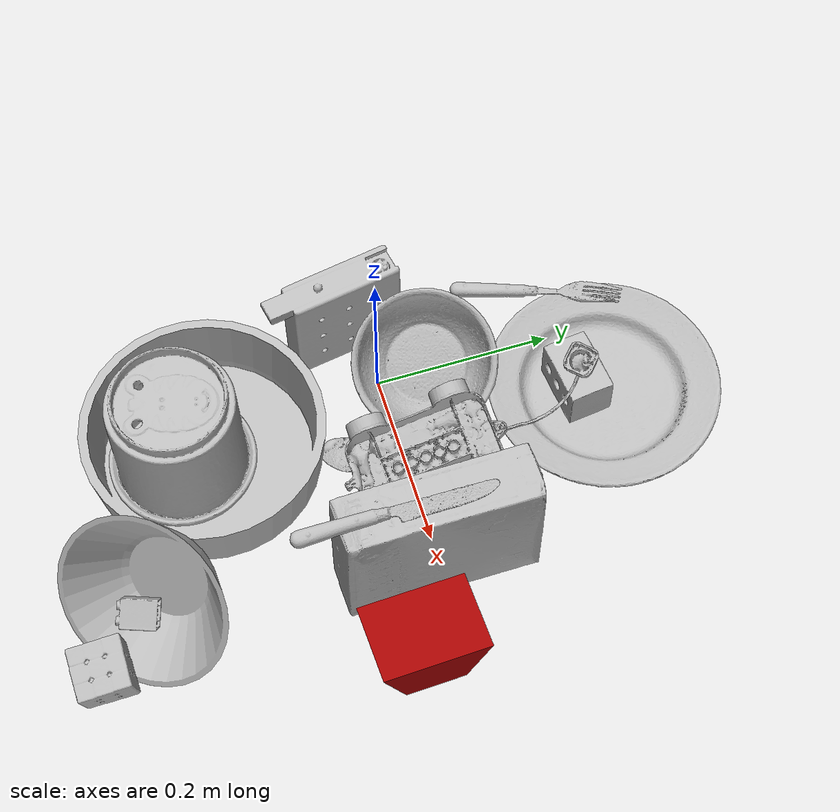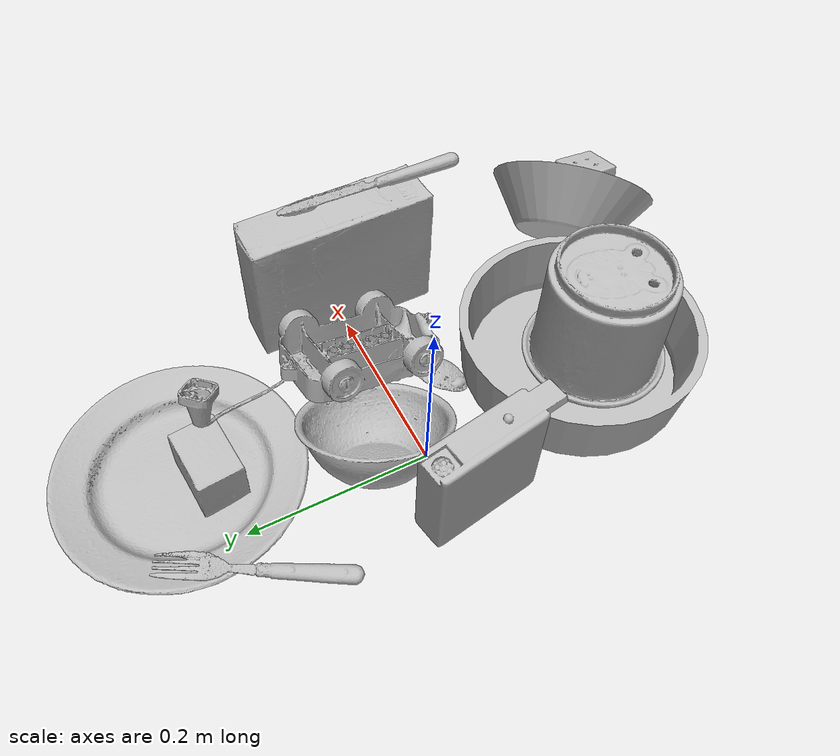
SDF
<sdf version="1.4">
  <world name="default">
    <light name="light1" type="point">
      <pose>0 0 1 0 0 0</pose>
      <diffuse>3 3 3 1</diffuse>
      <specular>3 3 3 1</specular>
    </light>
    <light name="light2" type="point">
      <pose>0 0.5 2 0 0 0</pose>
      <diffuse>1 1 1 1</diffuse>
      <specular>1 1 1 1</specular>
    </light>
    <light name="light3" type="point">
      <pose>0 0.5 2 0 0 0</pose>
      <diffuse>3 3 3 1</diffuse>
      <specular>3 3 3 1</specular>
    </light>
    <scene>
      <ambient>0.7 0.7 0.7</ambient>
    </scene>
    <model name="plate1">
      <link name="link_plate1">
        <collision name="default">
          <geometry>
            <mesh>
              <uri>model://pan_tefal/collision_meshes/collision.obj</uri>
              <scale>1.0 1.0 1.0</scale>
            </mesh>
          </geometry>
          <surface>
            <friction>
              <ode>
                <mu>0.5</mu>
                <mu2>0.5</mu2>
              </ode>
            </friction>
          <contact>
        <ode>
            <max_vel>0</max_vel>
            <min_depth>0.0001</min_depth>
            <kp>1e8</kp>
        </ode>
    </contact></surface>
        </collision>
        <visual name="default">
          <geometry>
            <mesh>
              <uri>model://pan_tefal/visual_meshes/visual.dae</uri>
              <scale>1.0 1.0 1.0</scale>
            </mesh>
          </geometry>
        </visual>
        <inertial>
          <mass>0.7575002908706665</mass>
          <pose>-0.00018002181604970247 3.278869189671241e-05 -0.00851493701338768 0.0008190213215647545 -0.0003301469994364688 -0.3318472895374236</pose>
          <inertia>
            <ixx>0.0052289874</ixx>
            <iyy>0.0052627004</iyy>
            <izz>0.009625561</izz>
            <ixy>0</ixy>
            <ixz>0</ixz>
            <iyz>0</iyz>
          </inertia>
        </inertial>
      </link>
      <pose>0.034306712448596954 -0.20475228130817413 0.037971317768096924 -0.00046993733056915205 -0.0004528125097112283 0.9629748403451839</pose>
    </model>
    <model name="plate2">
      <link name="link_plate2">
        <collision name="default">
          <geometry>
            <mesh>
              <uri>model://plate/collision_meshes/collision.obj</uri>
              <scale>1.0 1.0 1.0</scale>
            </mesh>
          </geometry>
          <surface>
            <friction>
              <ode>
                <mu>0.5</mu>
                <mu2>0.5</mu2>
              </ode>
            </friction>
          <contact>
        <ode>
            <max_vel>0</max_vel>
            <min_depth>0.0001</min_depth>
            <kp>1e8</kp>
        </ode>
    </contact></surface>
        </collision>
        <visual name="default">
          <geometry>
            <mesh>
              <uri>model://plate/visual_meshes/visual.dae</uri>
              <scale>1.0 1.0 1.0</scale>
            </mesh>
          </geometry>
        </visual>
        <inertial>
          <mass>0.24305373430252075</mass>
          <pose>-0.0006044657784514129 0.0002782582014333457 -0.0010561988456174731 0.0022187349237576767 -0.0032255124479001144 0.4526250186623527</pose>
          <inertia>
            <ixx>0.00113701</ixx>
            <iyy>0.0011261352</iyy>
            <izz>0.0022238225</izz>
            <ixy>0</ixy>
            <ixz>0</ixz>
            <iyz>0</iyz>
          </inertia>
        </inertial>
      </link>
      <pose>0.08532142639160156 0.23822282254695892 0.013733104802668095 5.95489864733327e-06 5.040463981817904e-06 -0.9940194105997759</pose>
    </model>
    <model name="bowl1">
      <link name="link_bowl1">
        <collision name="default">
          <geometry>
            <mesh>
              <uri>model://bowl/collision_meshes/collision.obj</uri>
              <scale>1.0 1.0 1.0</scale>
            </mesh>
          </geometry>
          <surface>
            <friction>
              <ode>
                <mu>0.5</mu>
                <mu2>0.5</mu2>
              </ode>
            </friction>
          <contact>
        <ode>
            <max_vel>0</max_vel>
            <min_depth>0.0001</min_depth>
            <kp>1e8</kp>
        </ode>
    </contact></surface>
        </collision>
        <visual name="default">
          <geometry>
            <mesh>
              <uri>model://bowl/visual_meshes/visual.dae</uri>
              <scale>1.0 1.0 1.0</scale>
            </mesh>
          </geometry>
        </visual>
        <inertial>
          <mass>0.08028676360845566</mass>
          <pose>0.00020445045083761215 -0.0010302026057615876 -0.0008042661938816309 -0.015764207515600946 0.014546645366850262 0.7140316236369888</pose>
          <inertia>
            <ixx>0.00018442512</ixx>
            <iyy>0.00018030431</iyy>
            <izz>0.0003102665</izz>
            <ixy>0</ixy>
            <ixz>0</ixz>
            <iyz>0</iyz>
          </inertia>
        </inertial>
      </link>
      <pose>0.014821420423686504 0.051218122243881226 0.04550369828939438 0.41290791465753907 -0.28148911876553084 1.7269758494493386</pose>
    </model>
    <model name="bowl2">
      <link name="link_bowl2">
        <collision name="default">
          <geometry>
            <mesh>
              <uri>model://bowl_a/collision_meshes/collision.obj</uri>
              <scale>1.0 1.0 1.0</scale>
            </mesh>
          </geometry>
          <surface>
            <friction>
              <ode>
                <mu>0.5</mu>
                <mu2>0.5</mu2>
              </ode>
            </friction>
          <contact>
        <ode>
            <max_vel>0</max_vel>
            <min_depth>0.0001</min_depth>
            <kp>1e8</kp>
        </ode>
    </contact></surface>
        </collision>
        <visual name="default">
          <geometry>
            <mesh>
              <uri>model://bowl_a/visual_meshes/visual.dae</uri>
              <scale>1.0 1.0 1.0</scale>
            </mesh>
          </geometry>
        </visual>
        <inertial>
          <mass>0.2016693353652954</mass>
          <pose>0.000278673687716946 4.731108856503852e-05 -0.0013765295734629035 -0.0009805301894988984 -0.0010938186520021772 -0.19123883274053055</pose>
          <inertia>
            <ixx>0.00057416206</ixx>
            <iyy>0.000577687</iyy>
            <izz>0.0010211696</izz>
            <ixy>0</ixy>
            <ixz>0</ixz>
            <iyz>0</iyz>
          </inertia>
        </inertial>
      </link>
      <pose>0.1972118765115738 -0.2961258292198181 0.06366705149412155 0.9609176036432573 0.0005835924470175358 0.8123883445082108</pose>
    </model>
    <model name="silverware1">
      <link name="link_silverware1">
        <collision name="default">
          <geometry>
            <mesh>
              <uri>model://spoon/collision_meshes/collision.obj</uri>
              <scale>1.0 1.0 1.0</scale>
            </mesh>
          </geometry>
          <surface>
            <friction>
              <ode>
                <mu>0.5</mu>
                <mu2>0.5</mu2>
              </ode>
            </friction>
          <contact>
        <ode>
            <max_vel>0</max_vel>
            <min_depth>0.0001</min_depth>
            <kp>1e8</kp>
        </ode>
    </contact></surface>
        </collision>
        <visual name="default">
          <geometry>
            <mesh>
              <uri>model://spoon/visual_meshes/visual.dae</uri>
              <scale>1.0 1.0 1.0</scale>
            </mesh>
          </geometry>
        </visual>
        <inertial>
          <mass>0.023438503965735435</mass>
          <pose>-0.005526317749172449 -0.0016034176805987954 -0.000727164966519922 0.03521671071703309 -0.03906584129558259 0.006150610048623938</pose>
          <inertia>
            <ixx>1.3036873e-06</ixx>
            <iyy>8.918272e-05</iyy>
            <izz>8.982564e-05</izz>
            <ixy>0</ixy>
            <ixz>0</ixz>
            <iyz>0</iyz>
          </inertia>
        </inertial>
      </link>
      <pose>0.12340155988931656 -0.010923477821052074 0.01021306961774826 3.0836016419512022 -0.06152709564323096 -2.3057020967649478</pose>
    </model>
    <model name="box1">
      <link name="link_box1">
        <collision name="default">
          <geometry>
            <mesh>
              <uri>model://cracker_box/collision_meshes/collision.obj</uri>
              <scale>1.0 1.0 1.0</scale>
            </mesh>
          </geometry>
          <surface>
            <friction>
              <ode>
                <mu>0.5</mu>
                <mu2>0.5</mu2>
              </ode>
            </friction>
          <contact>
        <ode>
            <max_vel>0</max_vel>
            <min_depth>0.0001</min_depth>
            <kp>1e8</kp>
        </ode>
    </contact></surface>
        </collision>
        <visual name="default">
          <geometry>
            <mesh>
              <uri>model://cracker_box/visual_meshes/visual.dae</uri>
              <scale>1.0 1.0 1.0</scale>
            </mesh>
          </geometry>
        </visual>
        <inertial>
          <mass>3.1733922958374023</mass>
          <pose>0.0009464119793847203 0.00025434247800149024 -0.0017029535956680775 -0.00031620768891544627 -0.011106485874643508 0.0025467963987026074</pose>
          <inertia>
            <ixx>0.008071693</ixx>
            <iyy>0.013327951</iyy>
            <izz>0.01902021</izz>
            <ixy>0</ixy>
            <ixz>0</ixz>
            <iyz>0</iyz>
          </inertia>
        </inertial>
      </link>
      <pose>0.23167431354522705 -0.002979482989758253 0.08175750076770782 1.545244213003144 0.009041224949129352 1.5922696196824007</pose>
    </model>
    <model name="box2">
      <link name="link_box2">
        <collision name="default">
          <geometry>
            <mesh>
              <uri>model://rubiks_cube/collision_meshes/collision.obj</uri>
              <scale>1.0 1.0 1.0</scale>
            </mesh>
          </geometry>
          <surface>
            <friction>
              <ode>
                <mu>0.5</mu>
                <mu2>0.5</mu2>
              </ode>
            </friction>
          <contact>
        <ode>
            <max_vel>0</max_vel>
            <min_depth>0.0001</min_depth>
            <kp>1e8</kp>
        </ode>
    </contact></surface>
        </collision>
        <visual name="default">
          <geometry>
            <mesh>
              <uri>model://rubiks_cube/visual_meshes/visual.dae</uri>
              <scale>1.0 1.0 1.0</scale>
            </mesh>
          </geometry>
        </visual>
        <inertial>
          <mass>0.15184316039085388</mass>
          <pose>2.6721041649580002e-05 5.2569666877388954e-05 -7.264316536748083e-06 -0.0546734747968529 -0.09813870099197174 -0.03445517010401606</pose>
          <inertia>
            <ixx>8.390353e-05</ixx>
            <iyy>8.351226e-05</iyy>
            <izz>8.459882e-05</izz>
            <ixy>0</ixy>
            <ixz>0</ixz>
            <iyz>0</iyz>
          </inertia>
        </inertial>
      </link>
      <pose>0.25722408294677734 -0.37000957131385803 0.03553934395313263 1.7815501905139155 -0.06369357315631831 1.5676808202669246</pose>
    </model>
    <model name="cup1">
      <link name="link_cup1">
        <collision name="default">
          <geometry>
            <mesh>
              <uri>model://f_cups/collision_meshes/collision.obj</uri>
              <scale>2.0 2.0 2.0</scale>
            </mesh>
          </geometry>
          <surface>
            <friction>
              <ode>
                <mu>0.5</mu>
                <mu2>0.5</mu2>
              </ode>
            </friction>
          <contact>
        <ode>
            <max_vel>0</max_vel>
            <min_depth>0.0001</min_depth>
            <kp>1e8</kp>
        </ode>
    </contact></surface>
        </collision>
        <visual name="default">
          <geometry>
            <mesh>
              <uri>model://f_cups/visual_meshes/visual.dae</uri>
              <scale>2.0 2.0 2.0</scale>
            </mesh>
          </geometry>
        </visual>
        <inertial>
          <mass>0.31799542903900146</mass>
          <pose>-0.006342939101159573 -0.0012480145087465644 -0.00731107359752059 0.7862267301708457 -0.2607925342729672 -0.18237300859269054</pose>
          <inertia>
            <ixx>0.0011956966</ixx>
            <iyy>0.0012542997</iyy>
            <izz>0.001305761</izz>
            <ixy>0</ixy>
            <ixz>0</ixz>
            <iyz>0</iyz>
          </inertia>
        </inertial>
      </link>
      <pose>0.03392193093895912 -0.23314376175403595 0.08022184669971466 3.1396742795227484 -0.00040717326784475553 -2.754484645653189</pose>
    </model>
    <model name="silverware2">
      <link name="link_silverware2">
        <collision name="default">
          <geometry>
            <mesh>
              <uri>model://knife/collision_meshes/collision.obj</uri>
              <scale>1.0 1.0 1.0</scale>
            </mesh>
          </geometry>
          <surface>
            <friction>
              <ode>
                <mu>0.5</mu>
                <mu2>0.5</mu2>
              </ode>
            </friction>
          <contact>
        <ode>
            <max_vel>0</max_vel>
            <min_depth>0.0001</min_depth>
            <kp>1e8</kp>
        </ode>
    </contact></surface>
        </collision>
        <visual name="default">
          <geometry>
            <mesh>
              <uri>model://knife/visual_meshes/visual.dae</uri>
              <scale>1.0 1.0 1.0</scale>
            </mesh>
          </geometry>
        </visual>
        <inertial>
          <mass>0.01713745854794979</mass>
          <pose>-0.02378525771200657 0.0015275123296305537 5.062021591584198e-05 0.07305753061421462 0.017248419855317693 -0.007409818535045194</pose>
          <inertia>
            <ixx>4.864306e-07</ixx>
            <iyy>6.583934e-05</iyy>
            <izz>6.5996e-05</izz>
            <ixy>0</ixy>
            <ixz>0</ixz>
            <iyz>0</iyz>
          </inertia>
        </inertial>
      </link>
      <pose>0.2369983196258545 -0.05009938031435013 0.17112940549850464 0.17743771542245196 -0.011341559418875973 1.5582140702332639</pose>
    </model>
    <model name="silverware3">
      <link name="link_silverware3">
        <collision name="default">
          <geometry>
            <mesh>
              <uri>model://fork/collision_meshes/collision.obj</uri>
              <scale>1.0 1.0 1.0</scale>
            </mesh>
          </geometry>
          <surface>
            <friction>
              <ode>
                <mu>0.5</mu>
                <mu2>0.5</mu2>
              </ode>
            </friction>
          <contact>
        <ode>
            <max_vel>0</max_vel>
            <min_depth>0.0001</min_depth>
            <kp>1e8</kp>
        </ode>
    </contact></surface>
        </collision>
        <visual name="default">
          <geometry>
            <mesh>
              <uri>model://fork/visual_meshes/visual.dae</uri>
              <scale>1.0 1.0 1.0</scale>
            </mesh>
          </geometry>
        </visual>
        <inertial>
          <mass>0.012323527596890926</mass>
          <pose>-0.029570043087005615 0.00046588233090005815 0.0003218861238565296 -0.013551145261099908 -0.01097783717976447 0.01445390335153306</pose>
          <inertia>
            <ixx>4.3200933e-07</ixx>
            <iyy>3.2173175e-05</iyy>
            <izz>3.236641e-05</izz>
            <ixy>0</ixy>
            <ixz>0</ixz>
            <iyz>0</iyz>
          </inertia>
        </inertial>
      </link>
      <pose>-0.05062219500541687 0.20341560244560242 0.02418753132224083 3.0496265537107714 -0.18925339172731617 1.1363890176544857</pose>
    </model>
    <model name="toy1">
      <link name="link_toy1">
        <collision name="default">
          <geometry>
            <mesh>
              <uri>model://foam_brick/collision_meshes/collision.obj</uri>
              <scale>1.0 1.0 1.0</scale>
            </mesh>
          </geometry>
          <surface>
            <friction>
              <ode>
                <mu>0.5</mu>
                <mu2>0.5</mu2>
              </ode>
            </friction>
          <contact>
        <ode>
            <max_vel>0</max_vel>
            <min_depth>0.0001</min_depth>
            <kp>1e8</kp>
        </ode>
    </contact></surface>
        </collision>
        <visual name="default">
          <geometry>
            <mesh>
              <uri>model://foam_brick/visual_meshes/visual.dae</uri>
              <scale>1.0 1.0 1.0</scale>
            </mesh>
          </geometry>
        </visual>
        <inertial>
          <mass>0.22379855811595917</mass>
          <pose>-0.00025224717683158815 0.0003458436403889209 -0.0002532101352699101 -0.29401565582258504 0.017274431815567964 -0.0007449878256007176</pose>
          <inertia>
            <ixx>9.775939e-05</ixx>
            <iyy>0.00015607789</iyy>
            <izz>0.00015806146</izz>
            <ixy>0</ixy>
            <ixz>0</ixz>
            <iyz>0</iyz>
          </inertia>
        </inertial>
      </link>
      <pose>0.07323487848043442 0.20942841470241547 0.030248552560806274 -1.5861431400460646 0.002002996950727151 -3.0411811704417895</pose>
    </model>
    <model name="toy2">
      <link name="link_toy2">
        <collision name="default">
          <geometry>
            <mesh>
              <uri>model://g_lego_duplo/collision_meshes/collision.obj</uri>
              <scale>1.0 1.0 1.0</scale>
            </mesh>
          </geometry>
          <surface>
            <friction>
              <ode>
                <mu>0.5</mu>
                <mu2>0.5</mu2>
              </ode>
            </friction>
          <contact>
        <ode>
            <max_vel>0</max_vel>
            <min_depth>0.0001</min_depth>
            <kp>1e8</kp>
        </ode>
    </contact></surface>
        </collision>
        <visual name="default">
          <geometry>
            <mesh>
              <uri>model://g_lego_duplo/visual_meshes/visual.dae</uri>
              <scale>1.0 1.0 1.0</scale>
            </mesh>
          </geometry>
        </visual>
        <inertial>
          <mass>0.5124852657318115</mass>
          <pose>-0.05004769191145897 0.0017554633086547256 0.003880675183609128 0.010962987419080987 0.0381082502855883 -0.09653031806986456</pose>
          <inertia>
            <ixx>0.0007425969</ixx>
            <iyy>0.0022451086</iyy>
            <izz>0.0028087152</izz>
            <ixy>0</ixy>
            <ixz>0</ixz>
            <iyz>0</iyz>
          </inertia>
        </inertial>
      </link>
      <pose>0.1221487820148468 0.07520663738250732 0.060248877853155136 -2.887645469503601 -0.1863961478163901 1.6060037503827898</pose>
    </model>
    <model name="toy3">
      <link name="link_toy3">
        <collision name="default">
          <geometry>
            <mesh>
              <uri>model://nine_hole_peg_test/collision_meshes/collision.obj</uri>
              <scale>1.0 1.0 1.0</scale>
            </mesh>
          </geometry>
          <surface>
            <friction>
              <ode>
                <mu>0.5</mu>
                <mu2>0.5</mu2>
              </ode>
            </friction>
          <contact>
        <ode>
            <max_vel>0</max_vel>
            <min_depth>0.0001</min_depth>
            <kp>1e8</kp>
        </ode>
    </contact></surface>
        </collision>
        <visual name="default">
          <geometry>
            <mesh>
              <uri>model://nine_hole_peg_test/visual_meshes/visual.dae</uri>
              <scale>1.0 1.0 1.0</scale>
            </mesh>
          </geometry>
        </visual>
        <inertial>
          <mass>0.8364987969398499</mass>
          <pose>-0.004617386497557163 -0.009647614322602749 2.6460691515239887e-05 -0.0014666793226822761 0.000719418076932787 -0.634241593386854</pose>
          <inertia>
            <ixx>0.0013080036</ixx>
            <iyy>0.0012212693</iyy>
            <izz>0.0022920077</izz>
            <ixy>0</ixy>
            <ixz>0</ixz>
            <iyz>0</iyz>
          </inertia>
        </inertial>
      </link>
      <pose>-0.06591493636369705 -0.029830627143383026 0.0686350017786026 -1.6634524861325353 -1.5635964195038652 -1.3059443366426267</pose>
    </model>
    <model name="toy4">
      <link name="link_toy4">
        <collision name="default">
          <geometry>
            <mesh>
              <uri>model://b_lego_duplo/collision_meshes/collision.obj</uri>
              <scale>1.0 1.0 1.0</scale>
            </mesh>
          </geometry>
          <surface>
            <friction>
              <ode>
                <mu>0.5</mu>
                <mu2>0.5</mu2>
              </ode>
            </friction>
          <contact>
        <ode>
            <max_vel>0</max_vel>
            <min_depth>0.0001</min_depth>
            <kp>1e8</kp>
        </ode>
    </contact></surface>
        </collision>
        <visual name="default">
          <geometry>
            <mesh>
              <uri>model://b_lego_duplo/visual_meshes/visual.dae</uri>
              <scale>1.0 1.0 1.0</scale>
            </mesh>
          </geometry>
        </visual>
        <inertial>
          <mass>0.0316849946975708</mass>
          <pose>-0.00011053055641241372 -9.15226701181382e-06 0.0019294292433187366 -0.03749472548528336 -0.026354304906346077 0.4518915128408031</pose>
          <inertia>
            <ixx>6.4845735e-06</ixx>
            <iyy>6.5281647e-06</iyy>
            <izz>5.777544e-06</izz>
            <ixy>0</ixy>
            <ixz>0</ixz>
            <iyz>0</iyz>
          </inertia>
        </inertial>
      </link>
      <pose>0.20498472452163696 -0.3208337426185608 0.033781491219997406 -1.4674350956764488 1.088077138607205 2.889648552975764</pose>
    </model>
    <model name="toy5">
      <link name="link_toy5">
        <collision name="default">
          <geometry>
            <mesh>
              <uri>model://prism/collision_meshes/collision.obj</uri>
              <scale>1.0 1.0 1.0</scale>
            </mesh>
          </geometry>
          <surface>
            <friction>
              <ode>
                <mu>0.5</mu>
                <mu2>0.5</mu2>
              </ode>
            </friction>
          <contact>
        <ode>
            <max_vel>0</max_vel>
            <min_depth>0.0001</min_depth>
            <kp>1e8</kp>
        </ode>
    </contact></surface>
        </collision>
        <visual name="default">
          <geometry>
            <mesh>
              <uri>model://prism/visual_meshes/visual.dae</uri>
              <scale>1.0 1.0 1.0</scale>
            </mesh>
          </geometry>
        </visual>
        <inertial>
          <mass>0.34586653113365173</mass>
          <pose>-9.853597293840721e-05 -4.96157269935793e-07 -0.0033869100734591484 0.0 0.006559180766136186 0.0</pose>
          <inertia>
            <ixx>0.00031214024</ixx>
            <iyy>0.00037722557</iyy>
            <izz>0.00046205617</izz>
            <ixy>0</ixy>
            <ixz>0</ixz>
            <iyz>0</iyz>
          </inertia>
        </inertial>
      </link>
      <pose>0.31856071949005127 -0.04605661332607269 0.031446877866983414 -3.141592640630533 0.016646750897308705 1.6132485215337795</pose>
    </model>
  <physics type="ode">
      <max_contacts>50</max_contacts>
      <ode>
        <solver>
          <type>quick</type>
          <iters>75</iters>
        </solver>
        <constraints>
          <contact_max_correcting_vel>0</contact_max_correcting_vel>
          <contact_surface_layer>0</contact_surface_layer>
        </constraints>
      </ode>
    </physics></world>
</sdf>
